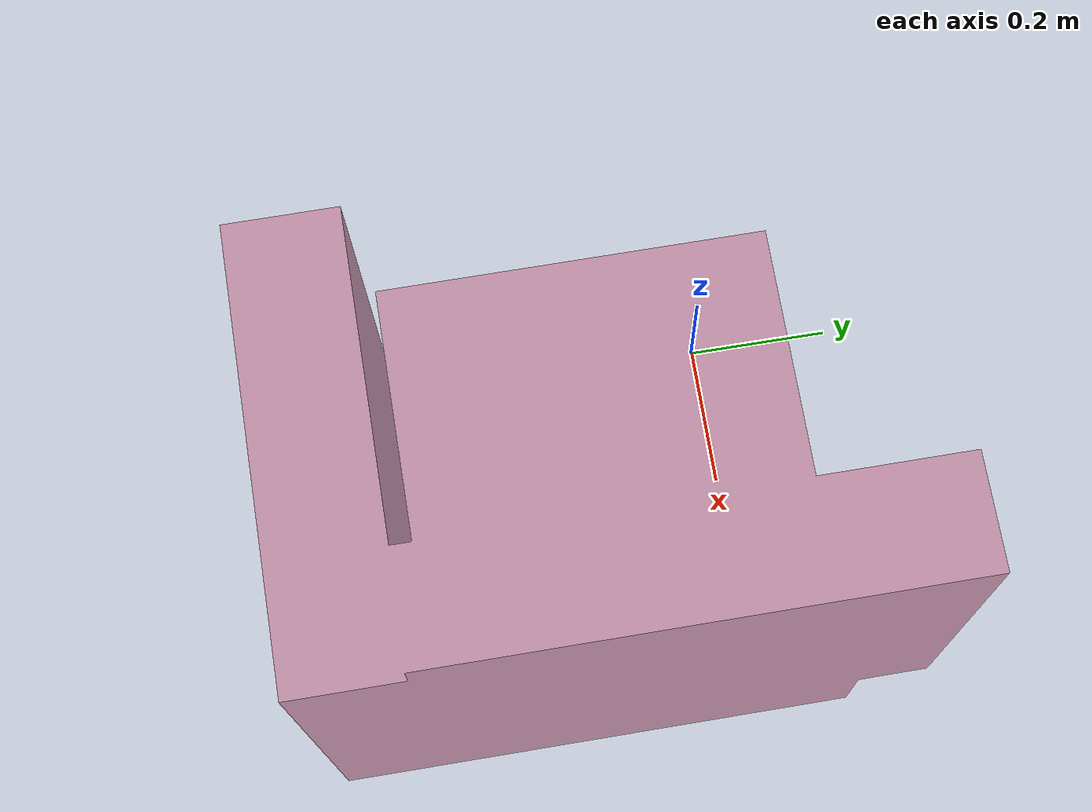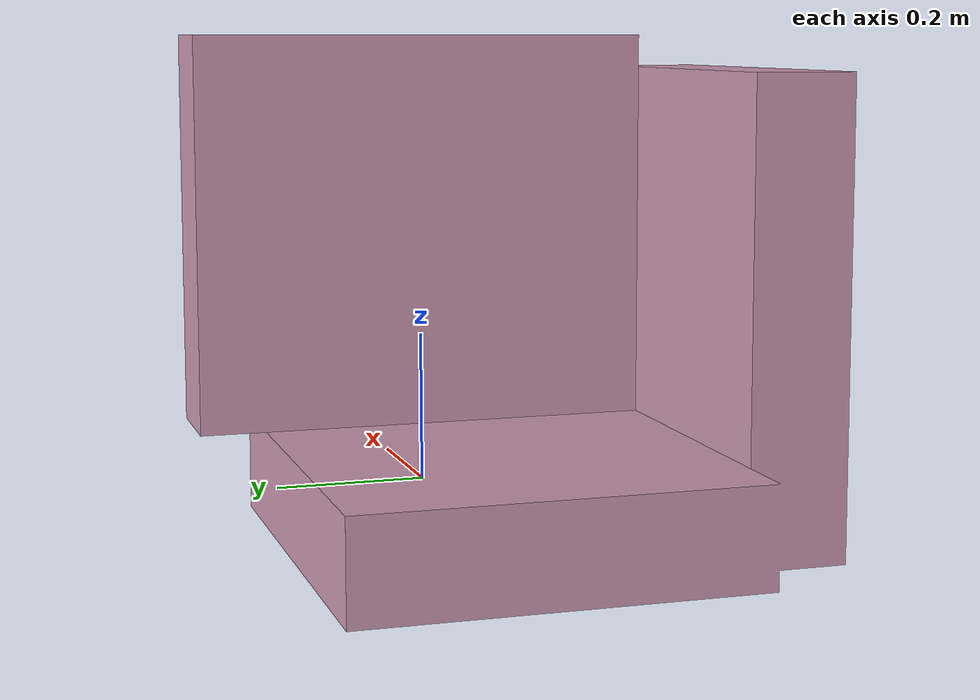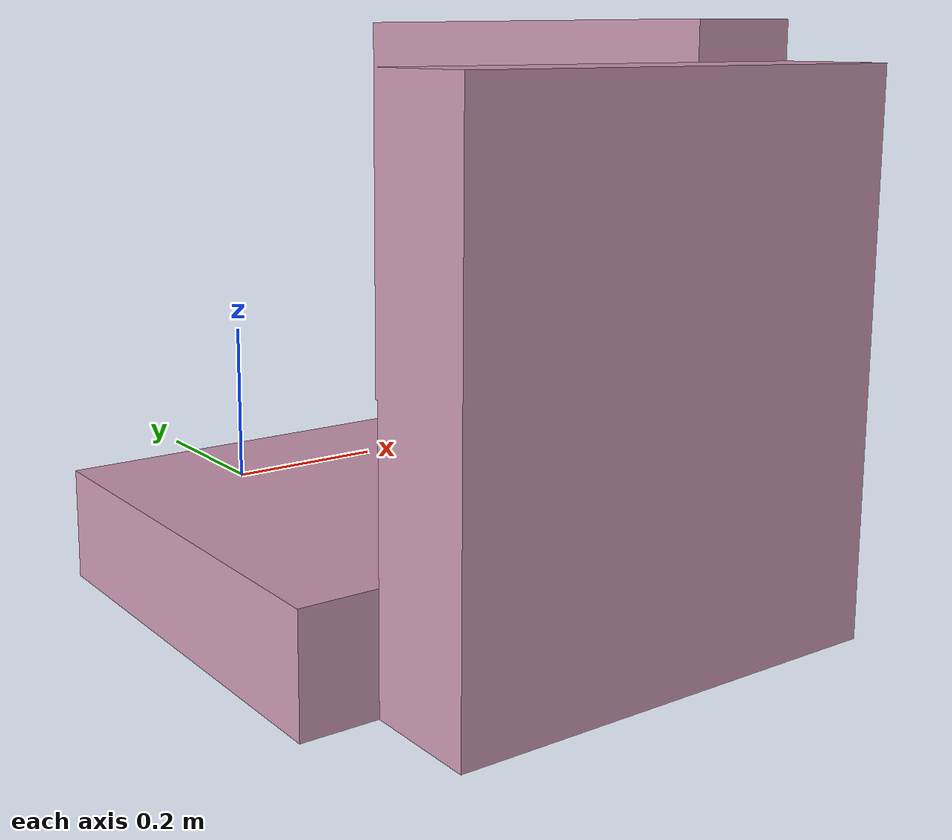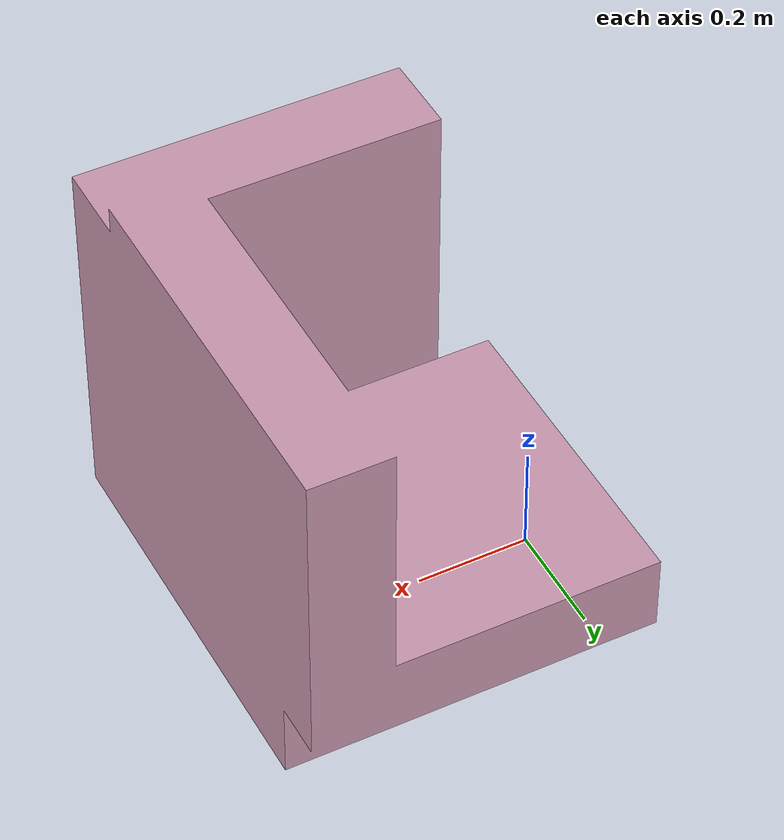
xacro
<?xml version="1.0"?>
<robot xmlns:xacro="http://ros.org/wiki/xacro">

	<link name="wall_link" >
		<visual>
			<geometry>
				<mesh filename="package://servo_description/meshes/wall.stl" />
			</geometry>
			<material name="LightGrey">
				<color rgba="0.8 0.6 0.7 1.0"/>
			</material>
		</visual>
		<collision>
			<geometry>
				<mesh filename="package://servo_description/meshes/wall.stl" />
			</geometry>
		</collision>
		<inertial>
			<mass value="${base_mass}" />
			<origin xyz="0.0 0.0 0.0" rpy="0 0 0" />
			<inertia
				ixx="0"        ixy="0"        ixz="0"
				iyy="0"        iyz="0"
				izz="0"
			/>
		</inertial>
	</link>

</robot>
